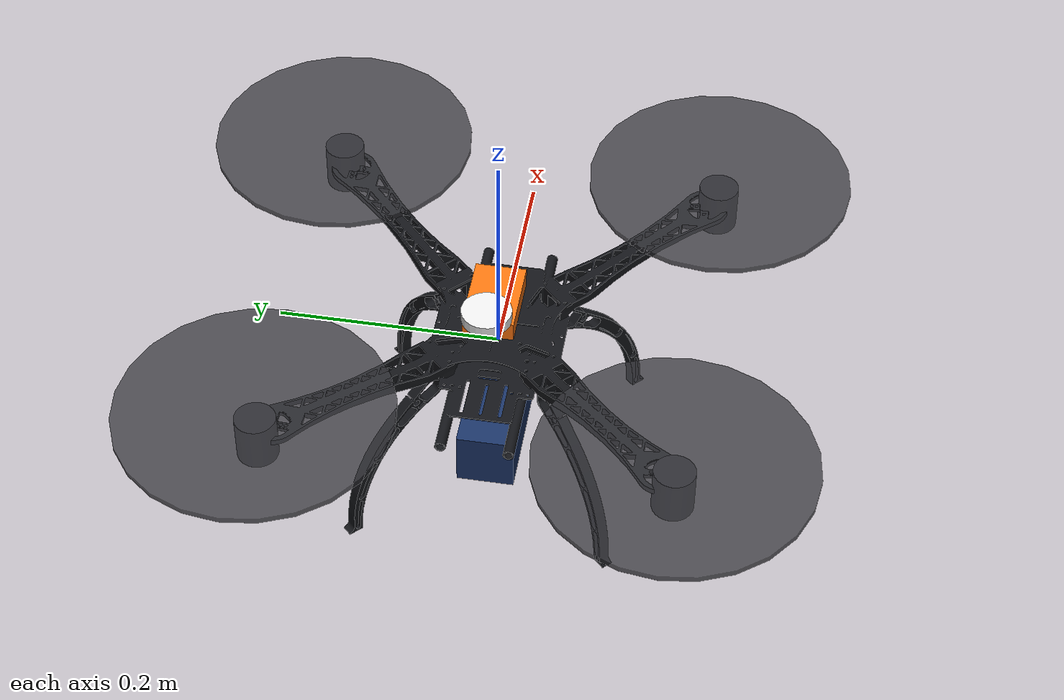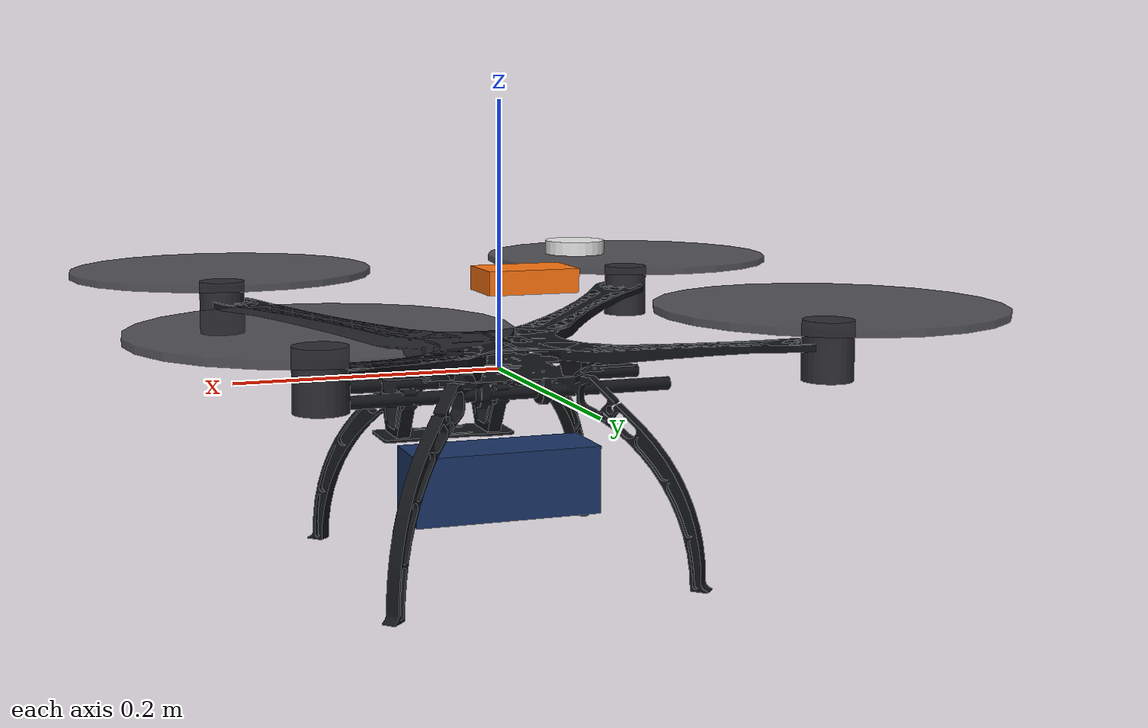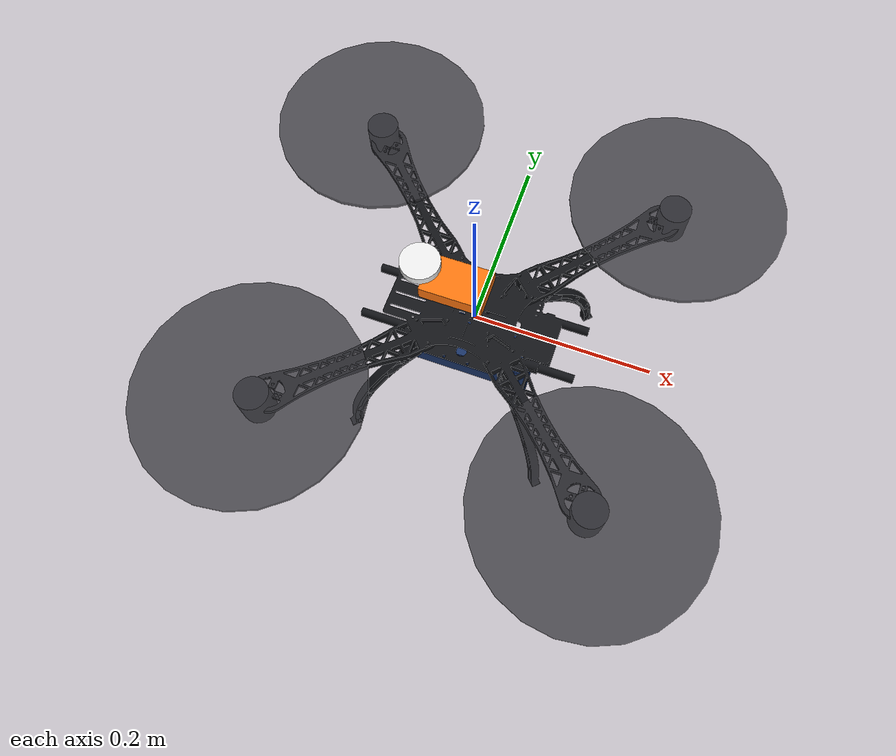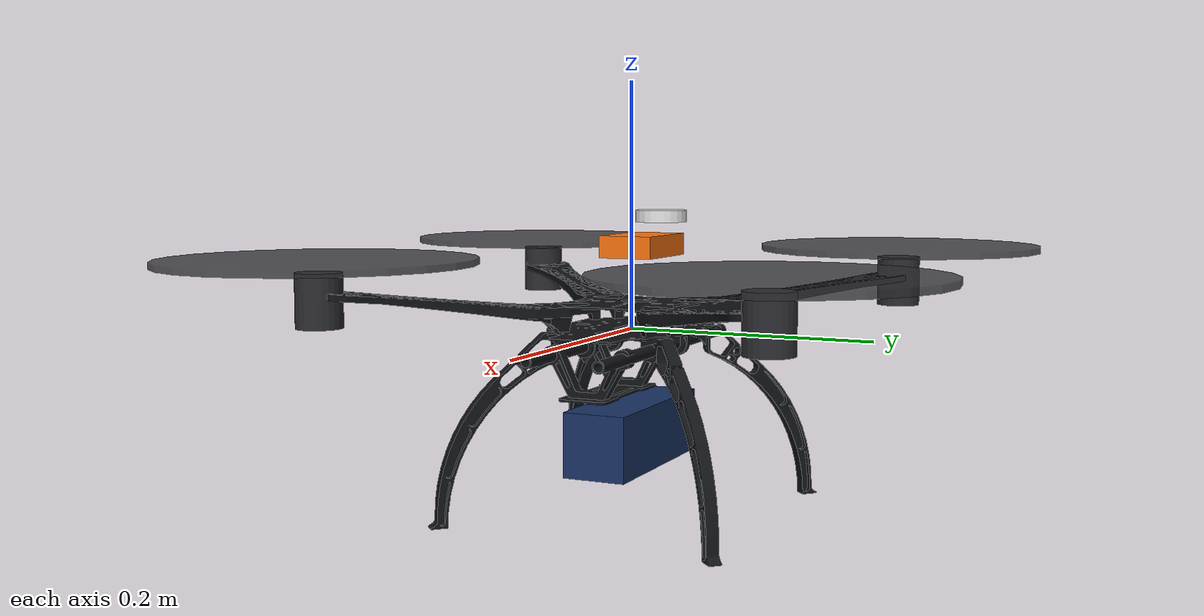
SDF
<?xml version="1.0"?>
<sdf version="1.9">
  <model name="s500_quad_x">
    <self_collide>false</self_collide>
    <allow_auto_disable>false</allow_auto_disable>

    <link name="base_link">
      <inertial>
        <mass>1.10</mass>
        <inertia>
          <ixx>0.018</ixx><iyy>0.021</iyy><izz>0.035</izz>
          <ixy>0</ixy><ixz>0</ixz><iyz>0</iyz>
        </inertia>
      </inertial>

      <!-- Detailed S500 CAD frame, including the original CAD landing gear. -->
      <visual name="s500_cad_frame">
        <geometry>
          <mesh>
            <uri>model://s500_quad_x/meshes/s500_frame_full.stl</uri>
            <scale>0.001 0.001 0.001</scale>
          </mesh>
        </geometry>
        <material>
          <ambient>0.025 0.028 0.035 1</ambient>
          <diffuse>0.075 0.080 0.095 1</diffuse>
          <specular>0.16 0.16 0.18 1</specular>
        </material>
      </visual>
      <visual name="battery_4s_6200mah">
        <pose>0 0 -0.085 0 0 0</pose>
        <geometry><box><size>0.145 0.052 0.052</size></box></geometry>
        <material><ambient>0.06 0.10 0.20 1</ambient><diffuse>0.10 0.20 0.40 1</diffuse></material>
      </visual>
      <visual name="pixhawk_6c">
        <pose>-0.020 0 0.067 0 0 0</pose>
        <geometry><box><size>0.070 0.045 0.018</size></box></geometry>
        <material><ambient>0.85 0.33 0.04 1</ambient><diffuse>1 0.46 0.06 1</diffuse></material>
      </visual>
      <visual name="gps_m10">
        <pose>-0.060 0 0.090 0 0 0</pose>
        <geometry><cylinder><radius>0.022</radius><length>0.010</length></cylinder></geometry>
        <material><ambient>0.75 0.75 0.75 1</ambient><diffuse>0.92 0.92 0.92 1</diffuse></material>
      </visual>
      <visual name="mtf01_optical_flow_housing">
        <pose>0.045 0 -0.094 0 0 0</pose>
        <geometry><box><size>0.038 0.032 0.014</size></box></geometry>
        <material><ambient>0.015 0.015 0.015 1</ambient><diffuse>0.04 0.04 0.04 1</diffuse></material>
      </visual>
      <visual name="mtf01_lens">
        <pose>0.045 0 -0.104 0 0 0</pose>
        <geometry><cylinder><radius>0.008</radius><length>0.004</length></cylinder></geometry>
        <material><ambient>0.02 0.08 0.12 1</ambient><diffuse>0.03 0.18 0.30 1</diffuse></material>
      </visual>

      <collision name="centre_plate_collision">
        <geometry><box><size>0.225 0.205 0.075</size></box></geometry>
      </collision>
      <collision name="battery_collision">
        <pose>0 0 -0.085 0 0 0</pose>
        <geometry><box><size>0.145 0.052 0.052</size></box></geometry>
      </collision>

      <!-- The full CAD mesh above provides the landing gear visuals. -->
      <collision name="leg_collision">
        <pose>0 0 -0.055 0 0 0</pose>
        <geometry><box><size>0.400 0.400 0.200</size></box></geometry>
      </collision>

      <!-- The SDF has native IMU, barometer and GPS placeholders for PX4 SITL. -->
      <sensor name="imu_sensor" type="imu">
        <gz_frame_id>base_link</gz_frame_id>
        <always_on>true</always_on><update_rate>250</update_rate>
      </sensor>
      <sensor name="navsat_sensor" type="navsat">
        <pose>-0.060 0 0.095 0 0 0</pose>
        <gz_frame_id>base_link</gz_frame_id>
        <always_on>true</always_on><update_rate>10</update_rate>
      </sensor>
      <sensor name="air_pressure_sensor" type="air_pressure">
        <gz_frame_id>base_link</gz_frame_id>
        <always_on>true</always_on><update_rate>50</update_rate>
      </sensor>
      <sensor name="magnetometer_sensor" type="magnetometer">
        <gz_frame_id>base_link</gz_frame_id>
        <always_on>true</always_on><update_rate>100</update_rate>
      </sensor>
    </link>

    <!--
      MTF-01 simulation payload.  PX4's Gazebo bridge subscribes to these
      exact links: flow_link for optical flow and lidar_sensor_link for the
      downward range measurement.
    -->
    <link name="flow_link">
      <pose relative_to="base_link">0.045 0 -0.104 0 1.570796 0</pose>
      <inertial>
        <mass>0.015</mass>
        <inertia><ixx>0.000003</ixx><iyy>0.000003</iyy><izz>0.000004</izz><ixy>0</ixy><ixz>0</ixz><iyz>0</iyz></inertia>
      </inertial>
      <sensor name="flow_camera" type="camera">
        <gz_frame_id>flow_link</gz_frame_id>
        <pose>0 0 0 0 1.5707 0</pose>
        <camera>
          <horizontal_fov>0.733038</horizontal_fov>
          <image><width>100</width><height>100</height></image>
          <clip><near>0.10</near><far>30.0</far></clip>
        </camera>
        <always_on>true</always_on><update_rate>50</update_rate><visualize>false</visualize>
      </sensor>
      <sensor name="optical_flow" type="custom" gz:type="optical_flow">
        <gz_frame_id>flow_link</gz_frame_id>
        <always_on>true</always_on><update_rate>50</update_rate><visualize>false</visualize>
      </sensor>
    </link>
    <joint name="mtf01_optical_flow_joint" type="fixed">
      <parent>base_link</parent><child>flow_link</child>
    </joint>

    <link name="lidar_sensor_link">
      <pose relative_to="base_link">0.045 0 -0.104 0 1.570796 0</pose>
      <inertial>
        <mass>0.005</mass>
        <inertia><ixx>0.000001</ixx><iyy>0.000001</iyy><izz>0.000001</izz><ixy>0</ixy><ixz>0</ixz><iyz>0</iyz></inertia>
      </inertial>
      <sensor name="lidar" type="gpu_lidar">
        <gz_frame_id>lidar_sensor_link</gz_frame_id>
        <pose>0 0 0 3.141593 0 0</pose>
        <update_rate>50</update_rate>
        <ray>
          <scan>
            <horizontal><samples>1</samples><resolution>1</resolution><min_angle>0</min_angle><max_angle>0</max_angle></horizontal>
            <vertical><samples>1</samples><resolution>1</resolution><min_angle>0</min_angle><max_angle>0</max_angle></vertical>
          </scan>
          <range><min>0.10</min><max>8.0</max><resolution>0.01</resolution></range>
        </ray>
        <always_on>true</always_on><visualize>false</visualize>
      </sensor>
    </link>
    <joint name="mtf01_range_joint" type="fixed">
      <parent>base_link</parent><child>lidar_sensor_link</child>
    </joint>

    <!-- Arms: motor centres are (+/- 0.1768, +/- 0.1768) m: 500 mm diagonal. -->
    <link name="arm_front_right">
      <pose relative_to="base_link">0.0884 -0.0884 0.018 0 0 -0.785398</pose>
      <inertial><mass>0.060</mass><inertia><ixx>0.00015</ixx><iyy>0.00080</iyy><izz>0.00085</izz></inertia></inertial>
      <collision name="collision"><geometry><box><size>0.260 0.030 0.018</size></box></geometry></collision>
    </link>
    <link name="arm_rear_left">
      <pose relative_to="base_link">-0.0884 0.0884 0.018 0 0 2.356194</pose>
      <inertial><mass>0.060</mass><inertia><ixx>0.00015</ixx><iyy>0.00080</iyy><izz>0.00085</izz></inertia></inertial>
      <collision name="collision"><geometry><box><size>0.260 0.030 0.018</size></box></geometry></collision>
    </link>
    <link name="arm_front_left">
      <pose relative_to="base_link">0.0884 0.0884 0.018 0 0 0.785398</pose>
      <inertial><mass>0.060</mass><inertia><ixx>0.00015</ixx><iyy>0.00080</iyy><izz>0.00085</izz></inertia></inertial>
      <collision name="collision"><geometry><box><size>0.260 0.030 0.018</size></box></geometry></collision>
    </link>
    <link name="arm_rear_right">
      <pose relative_to="base_link">-0.0884 -0.0884 0.018 0 0 -2.356194</pose>
      <inertial><mass>0.060</mass><inertia><ixx>0.00015</ixx><iyy>0.00080</iyy><izz>0.00085</izz></inertia></inertial>
      <collision name="collision"><geometry><box><size>0.260 0.030 0.018</size></box></geometry></collision>
    </link>

    <joint name="arm_front_right_joint" type="fixed"><parent>base_link</parent><child>arm_front_right</child></joint>
    <joint name="arm_rear_left_joint" type="fixed"><parent>base_link</parent><child>arm_rear_left</child></joint>
    <joint name="arm_front_left_joint" type="fixed"><parent>base_link</parent><child>arm_front_left</child></joint>
    <joint name="arm_rear_right_joint" type="fixed"><parent>base_link</parent><child>arm_rear_right</child></joint>

    <!-- Rotor links carry a 9.45 inch propeller visual and spin about local +Z. -->
    <link name="rotor_front_right">
      <pose relative_to="base_link">0.176777 -0.176777 0.052 0 0 0</pose>
      <inertial><mass>0.050</mass><inertia><ixx>0.00010</ixx><iyy>0.00010</iyy><izz>0.00018</izz></inertia></inertial>
      <visual name="motor"><pose>0 0 -0.020 0 0 0</pose><geometry><cylinder><radius>0.018</radius><length>0.042</length></cylinder></geometry><material><ambient>0.08 0.08 0.09 1</ambient><diffuse>0.18 0.18 0.20 1</diffuse></material></visual>
      <visual name="propeller"><pose>0 0 0.009 0 0 0</pose><geometry><cylinder><radius>0.120</radius><length>0.005</length></cylinder></geometry><material><ambient>0.10 0.10 0.11 0.80</ambient><diffuse>0.22 0.22 0.24 0.80</diffuse></material></visual>
    </link>
    <link name="rotor_rear_left">
      <pose relative_to="base_link">-0.176777 0.176777 0.052 0 0 0</pose>
      <inertial><mass>0.050</mass><inertia><ixx>0.00010</ixx><iyy>0.00010</iyy><izz>0.00018</izz></inertia></inertial>
      <visual name="motor"><pose>0 0 -0.020 0 0 0</pose><geometry><cylinder><radius>0.018</radius><length>0.042</length></cylinder></geometry><material><ambient>0.08 0.08 0.09 1</ambient><diffuse>0.18 0.18 0.20 1</diffuse></material></visual>
      <visual name="propeller"><pose>0 0 0.009 0 0 0</pose><geometry><cylinder><radius>0.120</radius><length>0.005</length></cylinder></geometry><material><ambient>0.10 0.10 0.11 0.80</ambient><diffuse>0.22 0.22 0.24 0.80</diffuse></material></visual>
    </link>
    <link name="rotor_front_left">
      <pose relative_to="base_link">0.176777 0.176777 0.052 0 0 0</pose>
      <inertial><mass>0.050</mass><inertia><ixx>0.00010</ixx><iyy>0.00010</iyy><izz>0.00018</izz></inertia></inertial>
      <visual name="motor"><pose>0 0 -0.020 0 0 0</pose><geometry><cylinder><radius>0.018</radius><length>0.042</length></cylinder></geometry><material><ambient>0.08 0.08 0.09 1</ambient><diffuse>0.18 0.18 0.20 1</diffuse></material></visual>
      <visual name="propeller"><pose>0 0 0.009 0 0 0</pose><geometry><cylinder><radius>0.120</radius><length>0.005</length></cylinder></geometry><material><ambient>0.10 0.10 0.11 0.80</ambient><diffuse>0.22 0.22 0.24 0.80</diffuse></material></visual>
    </link>
    <link name="rotor_rear_right">
      <pose relative_to="base_link">-0.176777 -0.176777 0.052 0 0 0</pose>
      <inertial><mass>0.050</mass><inertia><ixx>0.00010</ixx><iyy>0.00010</iyy><izz>0.00018</izz></inertia></inertial>
      <visual name="motor"><pose>0 0 -0.020 0 0 0</pose><geometry><cylinder><radius>0.018</radius><length>0.042</length></cylinder></geometry><material><ambient>0.08 0.08 0.09 1</ambient><diffuse>0.18 0.18 0.20 1</diffuse></material></visual>
      <visual name="propeller"><pose>0 0 0.009 0 0 0</pose><geometry><cylinder><radius>0.120</radius><length>0.005</length></cylinder></geometry><material><ambient>0.10 0.10 0.11 0.80</ambient><diffuse>0.22 0.22 0.24 0.80</diffuse></material></visual>
    </link>

    <joint name="rotor_front_right_joint" type="revolute">
      <parent>base_link</parent><child>rotor_front_right</child>
      <axis><xyz expressed_in="rotor_front_right">0 0 1</xyz><limit><effort>3</effort><velocity>1200</velocity></limit><dynamics><damping>0.00002</damping></dynamics></axis>
    </joint>
    <joint name="rotor_rear_left_joint" type="revolute">
      <parent>base_link</parent><child>rotor_rear_left</child>
      <axis><xyz expressed_in="rotor_rear_left">0 0 1</xyz><limit><effort>3</effort><velocity>1200</velocity></limit><dynamics><damping>0.00002</damping></dynamics></axis>
    </joint>
    <joint name="rotor_front_left_joint" type="revolute">
      <parent>base_link</parent><child>rotor_front_left</child>
      <axis><xyz expressed_in="rotor_front_left">0 0 1</xyz><limit><effort>3</effort><velocity>1200</velocity></limit><dynamics><damping>0.00002</damping></dynamics></axis>
    </joint>
    <joint name="rotor_rear_right_joint" type="revolute">
      <parent>base_link</parent><child>rotor_rear_right</child>
      <axis><xyz expressed_in="rotor_rear_right">0 0 1</xyz><limit><effort>3</effort><velocity>1200</velocity></limit><dynamics><damping>0.00002</damping></dynamics></axis>
    </joint>

    <!-- Provisional 9450/940 kV coefficients; they will be identified from a thrust stand. -->
    <plugin filename="gz-sim-multicopter-motor-model-system" name="gz::sim::systems::MulticopterMotorModel">
      <jointName>rotor_front_right_joint</jointName><linkName>rotor_front_right</linkName>
      <turningDirection>ccw</turningDirection><timeConstantUp>0.012</timeConstantUp><timeConstantDown>0.025</timeConstantDown>
      <maxRotVelocity>1050</maxRotVelocity><motorConstant>9.0e-6</motorConstant><momentConstant>0.016</momentConstant>
      <commandSubTopic>command/motor_speed</commandSubTopic><motorNumber>0</motorNumber>
      <rotorDragCoefficient>8.0e-5</rotorDragCoefficient><rollingMomentCoefficient>1.0e-6</rollingMomentCoefficient><rotorVelocitySlowdownSim>10</rotorVelocitySlowdownSim><motorType>velocity</motorType>
    </plugin>
    <plugin filename="gz-sim-multicopter-motor-model-system" name="gz::sim::systems::MulticopterMotorModel">
      <jointName>rotor_rear_left_joint</jointName><linkName>rotor_rear_left</linkName>
      <turningDirection>ccw</turningDirection><timeConstantUp>0.012</timeConstantUp><timeConstantDown>0.025</timeConstantDown>
      <maxRotVelocity>1050</maxRotVelocity><motorConstant>9.0e-6</motorConstant><momentConstant>0.016</momentConstant>
      <commandSubTopic>command/motor_speed</commandSubTopic><motorNumber>1</motorNumber>
      <rotorDragCoefficient>8.0e-5</rotorDragCoefficient><rollingMomentCoefficient>1.0e-6</rollingMomentCoefficient><rotorVelocitySlowdownSim>10</rotorVelocitySlowdownSim><motorType>velocity</motorType>
    </plugin>
    <plugin filename="gz-sim-multicopter-motor-model-system" name="gz::sim::systems::MulticopterMotorModel">
      <jointName>rotor_front_left_joint</jointName><linkName>rotor_front_left</linkName>
      <turningDirection>cw</turningDirection><timeConstantUp>0.012</timeConstantUp><timeConstantDown>0.025</timeConstantDown>
      <maxRotVelocity>1050</maxRotVelocity><motorConstant>9.0e-6</motorConstant><momentConstant>0.016</momentConstant>
      <commandSubTopic>command/motor_speed</commandSubTopic><motorNumber>2</motorNumber>
      <rotorDragCoefficient>8.0e-5</rotorDragCoefficient><rollingMomentCoefficient>1.0e-6</rollingMomentCoefficient><rotorVelocitySlowdownSim>10</rotorVelocitySlowdownSim><motorType>velocity</motorType>
    </plugin>
    <plugin filename="gz-sim-multicopter-motor-model-system" name="gz::sim::systems::MulticopterMotorModel">
      <jointName>rotor_rear_right_joint</jointName><linkName>rotor_rear_right</linkName>
      <turningDirection>cw</turningDirection><timeConstantUp>0.012</timeConstantUp><timeConstantDown>0.025</timeConstantDown>
      <maxRotVelocity>1050</maxRotVelocity><motorConstant>9.0e-6</motorConstant><momentConstant>0.016</momentConstant>
      <commandSubTopic>command/motor_speed</commandSubTopic><motorNumber>3</motorNumber>
      <rotorDragCoefficient>8.0e-5</rotorDragCoefficient><rollingMomentCoefficient>1.0e-6</rollingMomentCoefficient><rotorVelocitySlowdownSim>10</rotorVelocitySlowdownSim><motorType>velocity</motorType>
    </plugin>
  </model>
</sdf>
